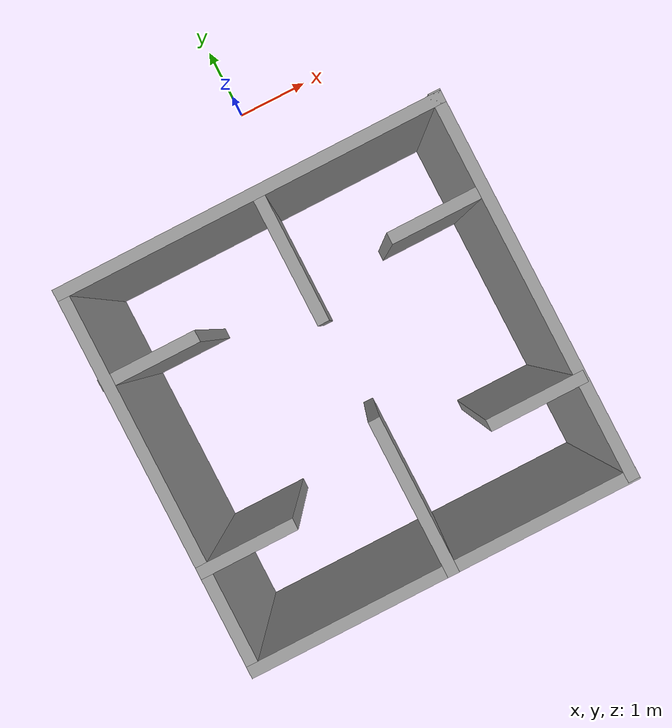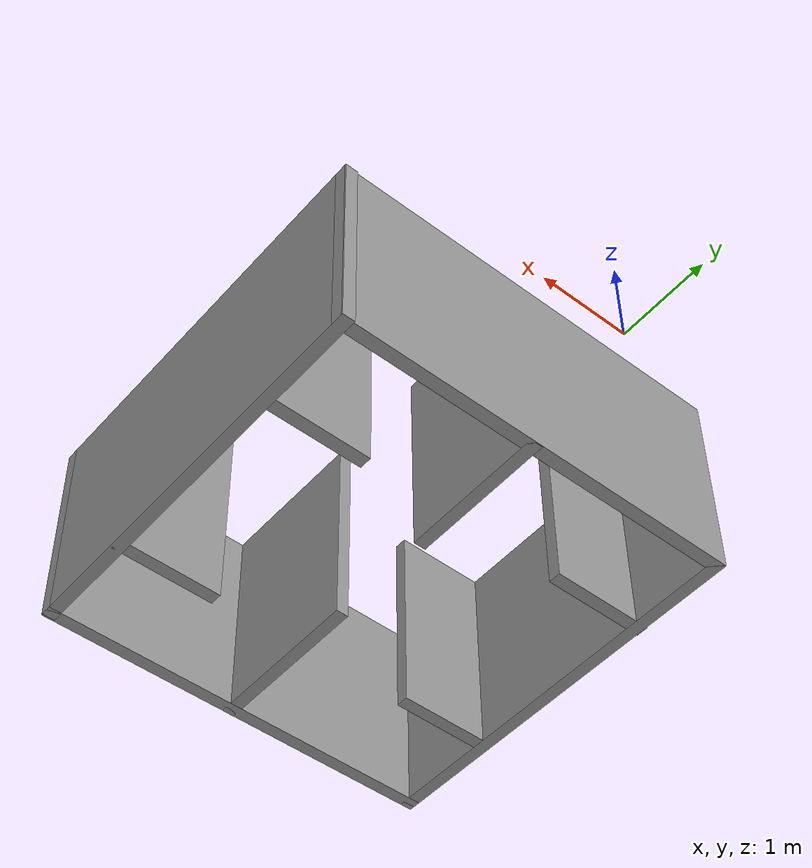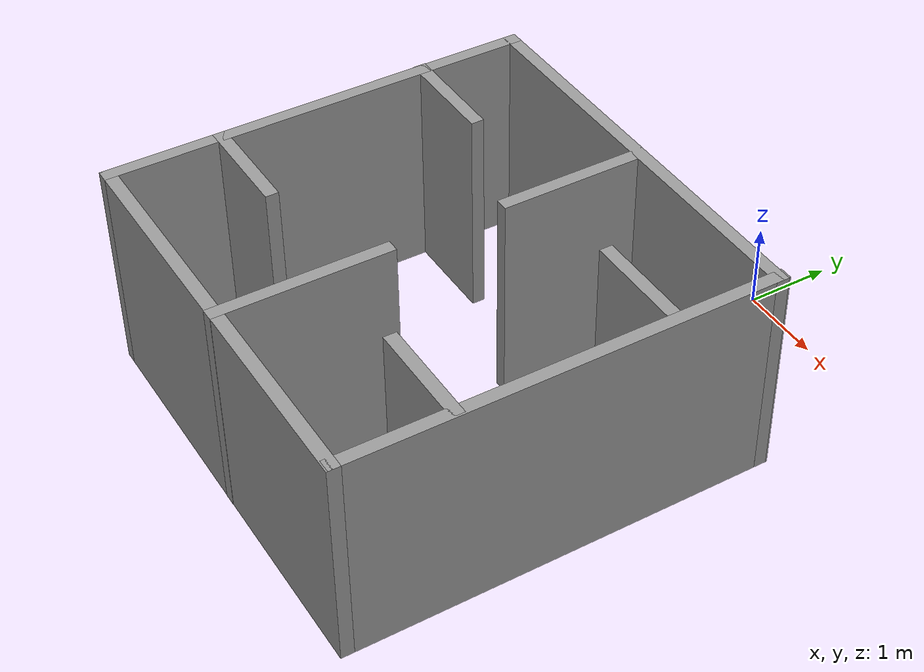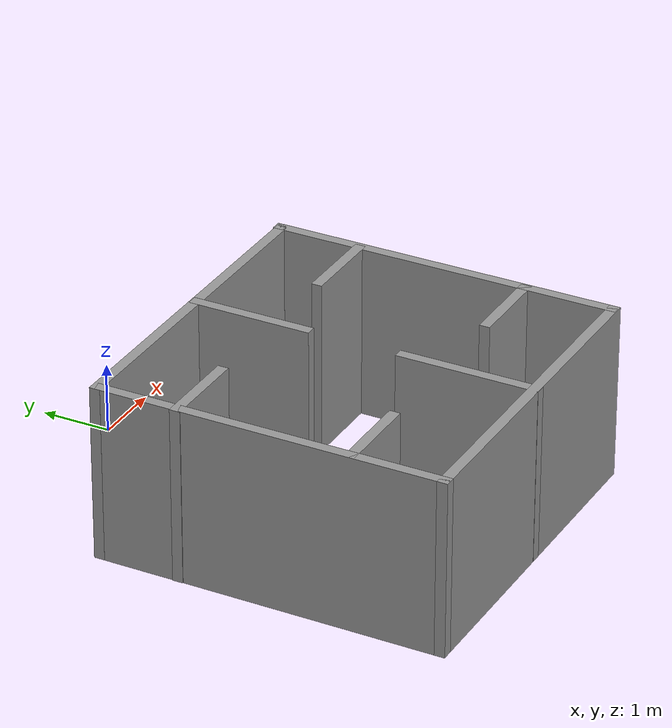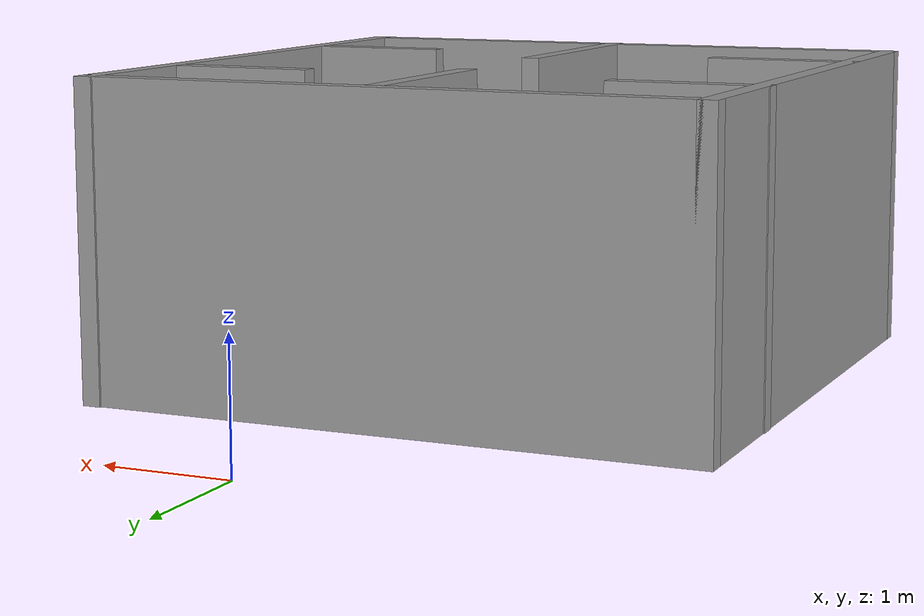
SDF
<?xml version='1.0'?>
<sdf version='1.6'>
  <model name='world1'>
    <pose frame=''>-0.359445 -3.95742 0 0 -0 0</pose>
    <link name='Wall_0'>
      <collision name='Wall_0_Collision'>
        <geometry>
          <box>
            <size>5.00028 0.15 2.5</size>
          </box>
        </geometry>
        <pose frame=''>0 0 1.25 0 -0 0</pose>
      </collision>
      <visual name='Wall_0_Visual'>
        <pose frame=''>0 0 1.25 0 -0 0</pose>
        <geometry>
          <box>
            <size>5.00028 0.15 2.5</size>
          </box>
        </geometry>
        <material>
          <script>
            <uri>file://media/materials/scripts/gazebo.material</uri>
            <name>Gazebo/Grey</name>
          </script>
          <ambient>1 1 1 1</ambient>
        </material>
      </visual>
      <pose frame=''>0.004445 2.41742 0 0 -0 0</pose>
    </link>
    <link name='Wall_1'>
      <collision name='Wall_1_Collision'>
        <geometry>
          <box>
            <size>0.15 0.15 2.5</size>
          </box>
        </geometry>
        <pose frame=''>0 0 1.25 0 -0 0</pose>
      </collision>
      <visual name='Wall_1_Visual'>
        <pose frame=''>0 0 1.25 0 -0 0</pose>
        <geometry>
          <box>
            <size>0.15 0.15 2.5</size>
          </box>
        </geometry>
        <material>
          <script>
            <uri>file://media/materials/scripts/gazebo.material</uri>
            <name>Gazebo/Grey</name>
          </script>
          <ambient>1 1 1 1</ambient>
        </material>
      </visual>
      <pose frame=''>2.42944 2.41742 0 0 -0 0</pose>
    </link>
    <link name='Wall_11'>
      <collision name='Wall_11_Collision'>
        <geometry>
          <box>
            <size>1.75 0.15 2.5</size>
          </box>
        </geometry>
        <pose frame=''>0 0 1.25 0 -0 0</pose>
      </collision>
      <visual name='Wall_11_Visual'>
        <pose frame=''>0 0 1.25 0 -0 0</pose>
        <geometry>
          <box>
            <size>1.75 0.15 2.5</size>
          </box>
        </geometry>
        <material>
          <script>
            <uri>file://media/materials/scripts/gazebo.material</uri>
            <name>Gazebo/Grey</name>
          </script>
          <ambient>1 1 1 1</ambient>
        </material>
      </visual>
      <pose frame=''>0.095066 1.60623 0 0 0 -1.5708</pose>
    </link>
    <link name='Wall_17'>
      <collision name='Wall_17_Collision'>
        <geometry>
          <box>
            <size>1.25 0.15 2.5</size>
          </box>
        </geometry>
        <pose frame=''>0 0 1.25 0 -0 0</pose>
      </collision>
      <visual name='Wall_17_Visual'>
        <pose frame=''>0 0 1.25 0 -0 0</pose>
        <geometry>
          <box>
            <size>1.25 0.15 2.5</size>
          </box>
        </geometry>
        <material>
          <script>
            <uri>file://media/materials/scripts/gazebo.material</uri>
            <name>Gazebo/Grey</name>
          </script>
          <ambient>1 1 1 1</ambient>
        </material>
      </visual>
      <pose frame=''>-1.87017 -1.15813 0 0 -0 0</pose>
    </link>
    <link name='Wall_19'>
      <collision name='Wall_19_Collision'>
        <geometry>
          <box>
            <size>1.25 0.15 2.5</size>
          </box>
        </geometry>
        <pose frame=''>0 0 1.25 0 -0 0</pose>
      </collision>
      <visual name='Wall_19_Visual'>
        <pose frame=''>0 0 1.25 0 -0 0</pose>
        <geometry>
          <box>
            <size>1.25 0.15 2.5</size>
          </box>
        </geometry>
        <material>
          <script>
            <uri>file://media/materials/scripts/gazebo.material</uri>
            <name>Gazebo/Grey</name>
          </script>
          <ambient>1 1 1 1</ambient>
        </material>
      </visual>
      <pose frame=''>1.85709 -1.17562 0 0 -0 3.14159</pose>
    </link>
    <link name='Wall_23'>
      <collision name='Wall_23_Collision'>
        <geometry>
          <box>
            <size>2 0.15 2.5</size>
          </box>
        </geometry>
        <pose frame=''>0 0 1.25 0 -0 0</pose>
      </collision>
      <visual name='Wall_23_Visual'>
        <pose frame=''>0 0 1.25 0 -0 0</pose>
        <geometry>
          <box>
            <size>2 0.15 2.5</size>
          </box>
        </geometry>
        <material>
          <script>
            <uri>file://media/materials/scripts/gazebo.material</uri>
            <name>Gazebo/Grey</name>
          </script>
          <ambient>1 1 1 1</ambient>
        </material>
      </visual>
      <pose frame=''>0.098399 -1.50991 0 0 -0 1.5708</pose>
    </link>
    <link name='Wall_3'>
      <collision name='Wall_3_Collision'>
        <geometry>
          <box>
            <size>5 0.15 2.5</size>
          </box>
        </geometry>
        <pose frame=''>0 0 1.25 0 -0 0</pose>
      </collision>
      <visual name='Wall_3_Visual'>
        <pose frame=''>0 0 1.25 0 -0 0</pose>
        <geometry>
          <box>
            <size>5 0.15 2.5</size>
          </box>
        </geometry>
        <material>
          <script>
            <uri>file://media/materials/scripts/gazebo.material</uri>
            <name>Gazebo/Grey</name>
          </script>
          <ambient>1 1 1 1</ambient>
        </material>
      </visual>
      <pose frame=''>2.42944 0.009909 0 0 0 -1.5708</pose>
    </link>
    <link name='Wall_4'>
      <collision name='Wall_4_Collision'>
        <geometry>
          <box>
            <size>5.00028 0.15 2.5</size>
          </box>
        </geometry>
        <pose frame=''>0 0 1.25 0 -0 0</pose>
      </collision>
      <visual name='Wall_4_Visual'>
        <pose frame=''>0 0 1.25 0 -0 0</pose>
        <geometry>
          <box>
            <size>5.00028 0.15 2.5</size>
          </box>
        </geometry>
        <material>
          <script>
            <uri>file://media/materials/scripts/gazebo.material</uri>
            <name>Gazebo/Grey</name>
          </script>
          <ambient>1 1 1 1</ambient>
        </material>
      </visual>
      <pose frame=''>0.004445 -2.43258 0 0 -0 3.14159</pose>
    </link>
    <link name='Wall_5'>
      <collision name='Wall_5_Collision'>
        <geometry>
          <box>
            <size>5 0.15 2.5</size>
          </box>
        </geometry>
        <pose frame=''>0 0 1.25 0 -0 0</pose>
      </collision>
      <visual name='Wall_5_Visual'>
        <pose frame=''>0 0 1.25 0 -0 0</pose>
        <geometry>
          <box>
            <size>5 0.15 2.5</size>
          </box>
        </geometry>
        <material>
          <script>
            <uri>file://media/materials/scripts/gazebo.material</uri>
            <name>Gazebo/Grey</name>
          </script>
          <ambient>1 1 1 1</ambient>
        </material>
      </visual>
      <pose frame=''>-2.42055 -0.007581 0 0 -0 1.5708</pose>
    </link>
    <link name='Wall_7'>
      <collision name='Wall_7_Collision'>
        <geometry>
          <box>
            <size>1.25 0.15 2.5</size>
          </box>
        </geometry>
        <pose frame=''>0 0 1.25 0 -0 0</pose>
      </collision>
      <visual name='Wall_7_Visual'>
        <pose frame=''>0 0 1.25 0 -0 0</pose>
        <geometry>
          <box>
            <size>1.25 0.15 2.5</size>
          </box>
        </geometry>
        <material>
          <script>
            <uri>file://media/materials/scripts/gazebo.material</uri>
            <name>Gazebo/Grey</name>
          </script>
          <ambient>1 1 1 1</ambient>
        </material>
      </visual>
      <pose frame=''>-1.87959 1.26558 0 0 -0 0</pose>
    </link>
    <link name='Wall_9'>
      <collision name='Wall_9_Collision'>
        <geometry>
          <box>
            <size>1.25 0.15 2.5</size>
          </box>
        </geometry>
        <pose frame=''>0 0 1.25 0 -0 0</pose>
      </collision>
      <visual name='Wall_9_Visual'>
        <pose frame=''>0 0 1.25 0 -0 0</pose>
        <geometry>
          <box>
            <size>1.25 0.15 2.5</size>
          </box>
        </geometry>
        <material>
          <script>
            <uri>file://media/materials/scripts/gazebo.material</uri>
            <name>Gazebo/Grey</name>
          </script>
          <ambient>1 1 1 1</ambient>
        </material>
      </visual>
      <pose frame=''>1.83246 1.24581 0 0 -0 3.14159</pose>
    </link>
    <static>1</static>
  </model>
</sdf>
